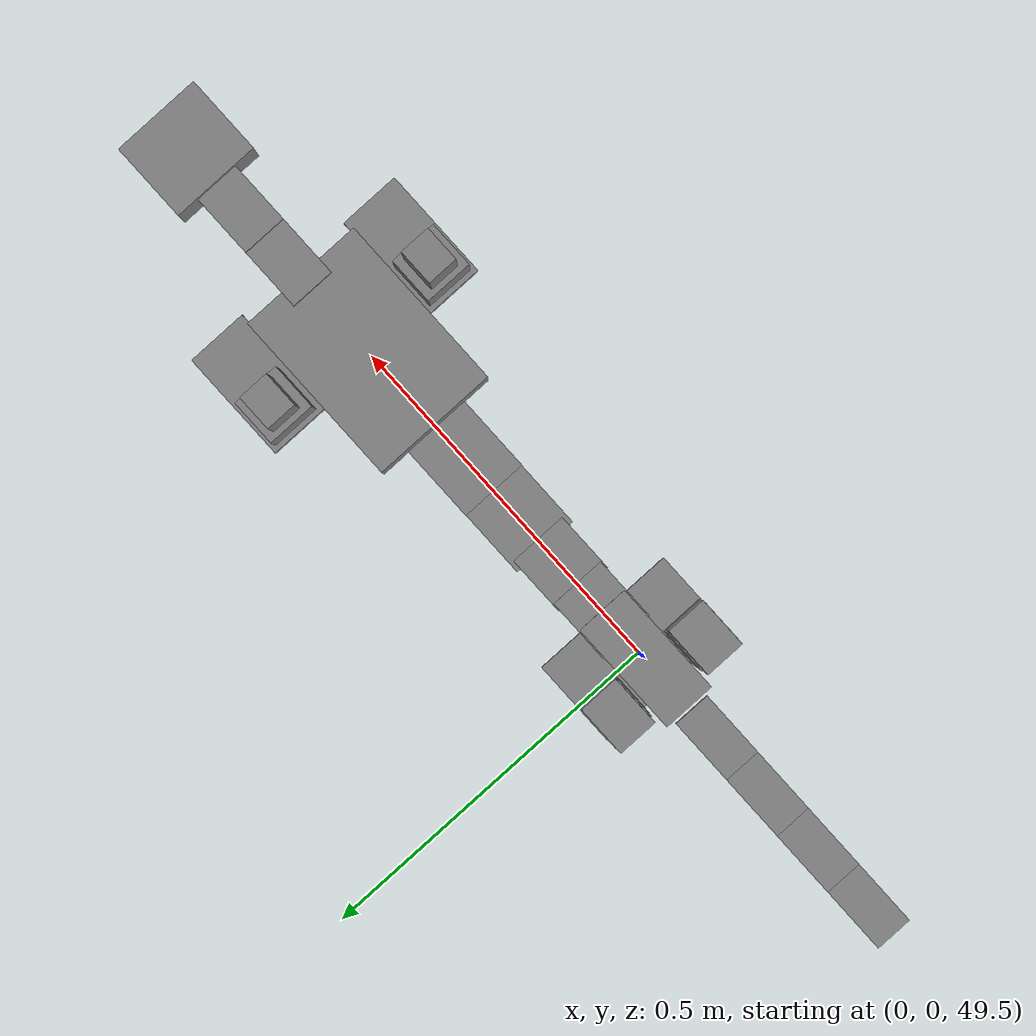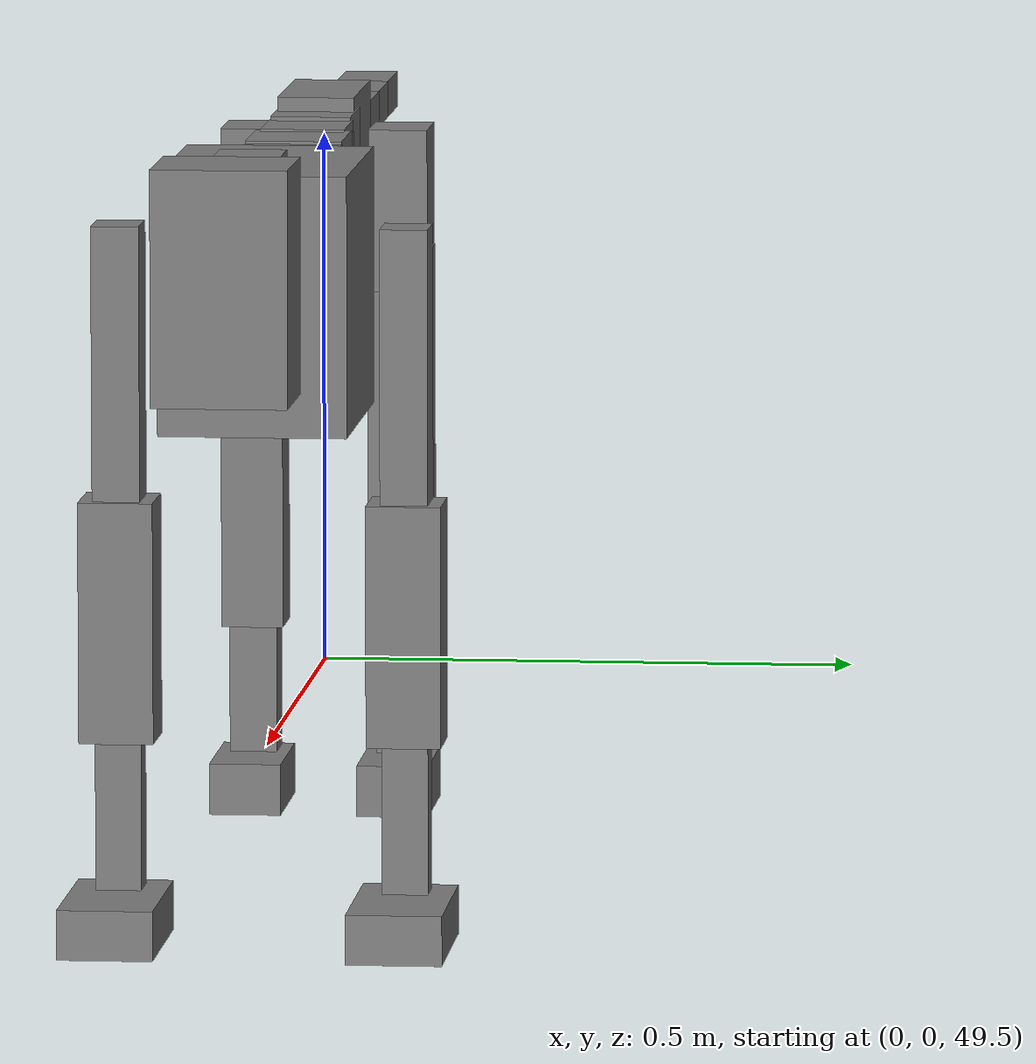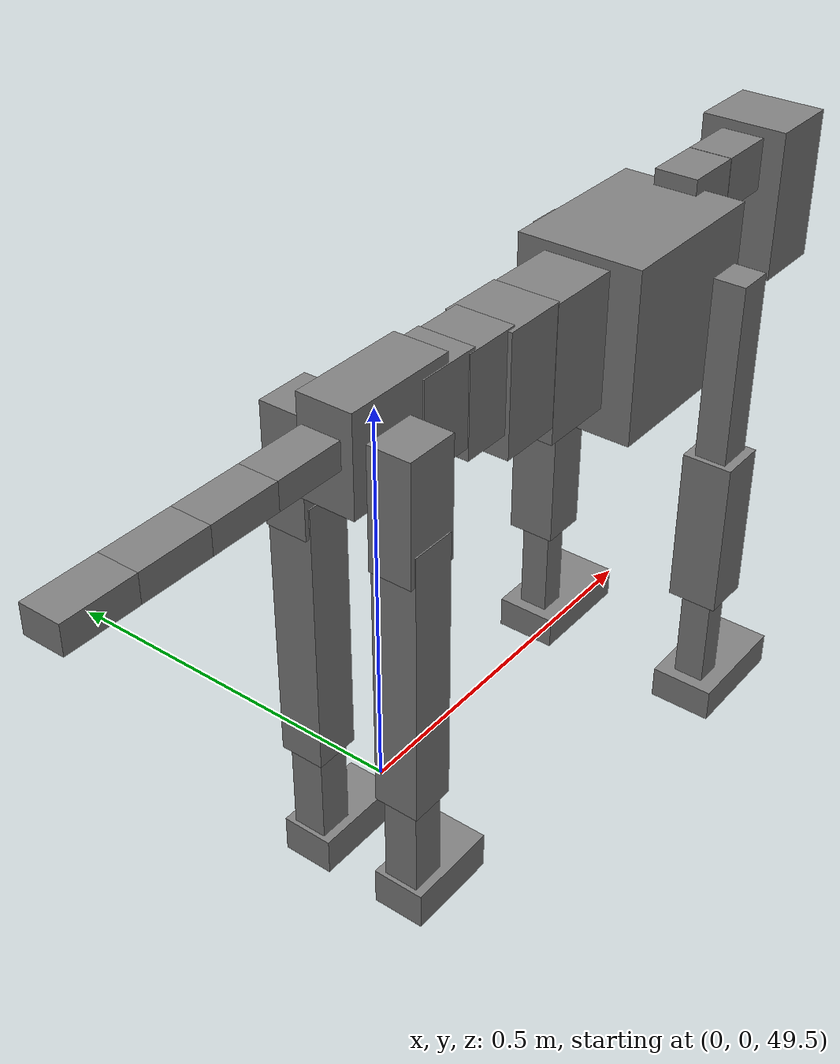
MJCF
<mujoco model="dog">

    <default>
        <joint armature="0.02" stiffness="1" damping="0.2" limited="true"/>
        <geom condim="3" friction="1 0.05 0.05" margin="0.01"/>
        <motor ctrllimited="true" ctrlrange="-1.0 1.0" forcelimited="true" gear="50"/>
    </default>

    <compiler inertiafromgeom="true" angle="radian"/>

    <option timestep="0.016" iterations="50" tolerance="1e-10" solver="Newton" jacobian="dense" cone="pyramidal"/>

    <size nconmax="20000" njmax="60000" nstack="5000000"/>
    <visual>
        <map force="0.1" zfar="30"/>
        <rgba haze="0.15 0.25 0.35 1"/>
        <quality shadowsize="2048"/>
        <global offwidth="800" offheight="800"/>
    </visual>

    <asset>
        <texture type="skybox" builtin="gradient" rgb1="0.3 0.5 0.7" rgb2="0 0 0" width="512" height="512"/>
        <texture name="texplane" type="2d" builtin="checker" rgb1=".2 .3 .4" rgb2=".1 0.15 0.2" width="512" height="512"
                 mark="cross" markrgb=".8 .8 .8"/>
        <texture name="texgeom" type="cube" builtin="flat" mark="cross" width="127" height="1278" rgb1="0.8 0.6 0.4"
                 rgb2="0.8 0.6 0.4" markrgb="1 1 1" random="0.01"/>

        <material name="matplane" reflectance="0.3" texture="texplane" texrepeat="1 1" texuniform="true"/>
        <material name="matgeom" texture="texgeom" texuniform="true" rgba="0.8 0.6 .4 1"/>
    </asset>

    <worldbody>
        <geom name="floor" pos="0 0 0" size="0 0 .25" type="plane" material="matplane" condim="3"/>

        <light directional="false" diffuse=".2 .2 .2" specular="0 0 0" pos="0 0 5" dir="0 0 -1" castshadow="false"/>
        <light mode="targetbodycom" target="torso" directional="false" diffuse=".8 .8 .8" specular="0.3 0.3 0.3"
               pos="0 0 4.0" dir="0 0 -1"/>

        <body name="root" pos="0 0 50">
            <freejoint name="root_1"/>
            <geom type="box" pos="0 0 -0.02" size="0.0774  0.0358  0.063" density="2030"/>

            <body name="spine1" pos="0.054 0 0">
                <joint name="spine1_y" axis="0 1 0" range="0 0.7" limited="true"/>
                <geom type="box" pos="0.02375 0 -0.03" size="0.04375  0.0375  0.05985" density="2030"/>

                <body name="spine2" pos="0.0612 0 0">
                    <joint name="spine2_y" axis="0 1 0" range="-0.15 0.15" limited="true"/>
                    <geom type="box" pos="0.03555  0  -0.04" size="0.04055  0.039  0.06615" density="2030"/>

                    <body name="spine3" pos="0.0730 0 0">
                        <joint name="spine3_y" axis="0 1 0" range="-0.15 0.15" limited="true"/>
                        <geom type="box" pos="0.03555  0  -0.057" size="0.04555  0.0445  0.081" density="2030"/>

                        <body name="spine4" pos="0.0780 0 0">
                            <joint name="spine4_y" axis="0 1 0" range="-0.15 0.15" limited="true"/>
                            <geom type="box" pos="0.05265  0  -0.07" size="0.05265  0.045  0.09135" density="2030"/>

                            <body name="torso" pos="0.1082 0 0">
                                <joint name="torso_y" axis="0 1 0" range="-0.15 0.15" limited="true"/>
                                <geom type="box" pos="0.11925  0  -0.085" size="0.11925  0.085  0.11745"
                                      density="2030"/>

                                <body name="neck1" pos="0.2160  0   0.0180">
                                    <joint name="neck1_y" axis="0 1 0" range="-1.2  -1" limited="true"/>
                                    <geom type="box" pos="0.0423  0  0" size="0.0423  0.03  0.036" density="2325"/>

                                    <body name="neck2" pos="0.0853  0  0">
                                        <joint name="neck2_y" axis="0 1 0" range="0.1  0" limited="true"/>
                                        <geom type="box" pos="0.0423  0  0" size="0.0423  0.03  0.036" density="2325"/>

                                        <body name="head" pos="0.0853  0  0">
                                            <joint name="head_y" axis="0 1 0" range="-0.3  -0.2" limited="true"/>
                                            <geom type="box" pos="0.0531  0  -0.055" size="0.0531  0.06  0.1044"
                                                  density="4030"/>

                                        </body>
                                    </body>
                                </body>

                                <body name="front_shoulder" pos="0.156  0   -0.0480">
                                    <joint name="front_shoulder_y" axis="0 1 0" range="-1 1.5" limited="true"/>
                                    <geom type="box" pos="0 0.13 -0.1113" size="0.0253  0.0216  0.1379" density="1158"/>
                                    <geom type="box" pos="0 -0.13 -0.1113" size="0.0253  0.0216  0.1379"
                                          density="1158"/>

                                    <body name="front_elbow" pos="0  0  -0.2226">
                                        <joint name="front_elbow_y" axis="0 1 0" range="-2 0" limited="true"/>
                                        <geom type="box" pos="0 0.13 -0.1098" size="0.0331  0.0338  0.1098"
                                              density="1081"/>
                                        <geom type="box" pos="0 -0.13 -0.1098" size="0.0331  0.0338  0.1098"
                                              density="1081"/>

                                        <body name="front_wrist" pos="0  0  -0.2195">
                                            <joint name="front_wrist_y" axis="0 1 0" range="-0.2 0" limited="true"/>
                                            <geom type="box" pos="0 0.13 -0.0755" size="0.0187  0.0208  0.0886"
                                                  density="1664"/>
                                            <geom type="box" pos="0 -0.13 -0.0755" size="0.0187  0.0208  0.0886"
                                                  density="1664"/>

                                            <body name="front_finger_end" pos="0  0  -0.1510">
                                                <joint name="front_finger_y" axis="0 1 0" range="-0.4 1"
                                                       limited="true"/>
                                                <geom type="box" pos="0.0433  0.13  -0.0077"
                                                      size="0.0794  0.0433  0.0227" density="1515"/>
                                                <geom type="box" pos="0.0433  -0.13  -0.0077"
                                                      size="0.0794  0.0433  0.0227" density="1515"/>

                                            </body>

                                        </body>
                                    </body>
                                </body>

                            </body>
                        </body>
                    </body>
                </body>
            </body>

            <body name="back_hip" pos="-0.03 0 -0.018">
                <joint name="back_hip_y" axis="0 1 0" range="-1.5 0.3" limited="true"/>
                <geom type="box" pos="0 0.07 -0.0540" size="0.0352  0.0276  0.0768" density="1154"/>
                <geom type="box" pos="0 -0.07 -0.0540" size="0.0352  0.0276  0.0768" density="1154"/>

                <body name="back_knee" pos="0  0  -0.1081">
                    <joint name="back_knee_y" axis="0 1 0" range="0 2.8" limited="true"/>
                    <geom type="box" pos="0 0.07 -0.1652" size="0.0298  0.0293  0.1807" density="1227"/>
                    <geom type="box" pos="0 -0.07 -0.1652" size="0.0298  0.0293  0.1807" density="1227"/>

                    <body name="back_ankle" pos="0  0  -0.3304">
                        <joint name="back_ankle_y" axis="0 1 0" range="-2.2 0" limited="true"/>
                        <geom type="box" pos="0 0.07 -0.0756" size="0.0225  0.0225  0.0868" density="1284"/>
                        <geom type="box" pos="0 -0.07 -0.0756" size="0.0225  0.0225  0.0868" density="1284"/>

                        <body name="back_toe_end" pos="0  0  -0.1512">
                            <joint name="back_toe_y" axis="0 1 0" range="-0.4 1" limited="true"/>
                            <geom type="box" pos="0.0339  0.07  -0.0093" size="0.0621  0.0339  0.0243" density="1515"/>
                            <geom type="box" pos="0.0339  -0.07  -0.0093" size="0.0621  0.0339  0.0243" density="1515"/>

                        </body>
                    </body>
                </body>
            </body>

            <body name="tail1" pos="-0.074 0 -0.006">
                <joint name="tail1_y" axis="0 1 0" range="-0.2 0.2" limited="true"/>
                <geom type="box" pos="-0.0536  0  0" size="0.045  0.025  0.0175" density="1587"/>

                <body name="tail2" pos="-0.09 0 0">
                    <joint name="tail2_y" axis="0 1 0" range="-0.2 0.2" limited="true"/>
                    <geom type="box" pos="-0.0536  0  0" size="0.045  0.025  0.0175" density="1587"/>

                    <body name="tail3" pos="-0.09 0 0">
                        <joint name="tail3_y" axis="0 1 0" range="-0.2 0.2" limited="true"/>
                        <geom type="box" pos="-0.0536  0  0" size="0.045  0.025  0.0175" density="1587"/>

                        <body name="tail4" pos="-0.09 0 0">
                            <joint name="tail4_y" axis="0 1 0" range="-0.2 0.2" limited="true"/>
                            <geom type="box" pos="-0.0536  0  0" size="0.045  0.025  0.0175" density="1587"/>

                        </body>
                    </body>
                </body>
            </body>
        </body>
    </worldbody>

    <actuator>
        <motor joint="spine1_y" forcerange="-150 150     "/>
        <motor joint="spine2_y" forcerange="-150 150     "/>
        <motor joint="spine3_y" forcerange="-150 150     "/>
        <motor joint="spine4_y" forcerange="-150 150     "/>
        <motor joint="torso_y" forcerange="-150 150     "/>
        <motor joint="neck1_y" forcerange="-100 100       "/>
        <motor joint="neck2_y" forcerange="-100 100       "/>
        <motor joint="head_y" forcerange="-150 150       "/>
        <motor joint="front_shoulder_y" forcerange="-111.46 132.87"/>
        <motor joint="front_elbow_y" forcerange="-158.62 187.11"/>
        <motor joint="front_wrist_y" forcerange="-88.31 77.81"/>
        <motor joint="front_finger_y" forcerange="-92.60 98.38"/>
        <motor joint="back_hip_y" forcerange="-357.31 210.33"/>
        <motor joint="back_knee_y" forcerange="-300.02 326.78"/>
        <motor joint="back_angle_y" forcerange="-153.10 106.55"/>
        <motor joint="back_toe_y" forcerange="-62.05 128.84"/>
        <motor joint="tail1_y" forcerange="-50 50     "/>
        <motor joint="tail2_y" forcerange="-50 50     "/>
        <motor joint="tail3_y" forcerange="-50 50     "/>
        <motor joint="tail4_y" forcerange="-50 50     "/>
    </actuator>
</mujoco>
